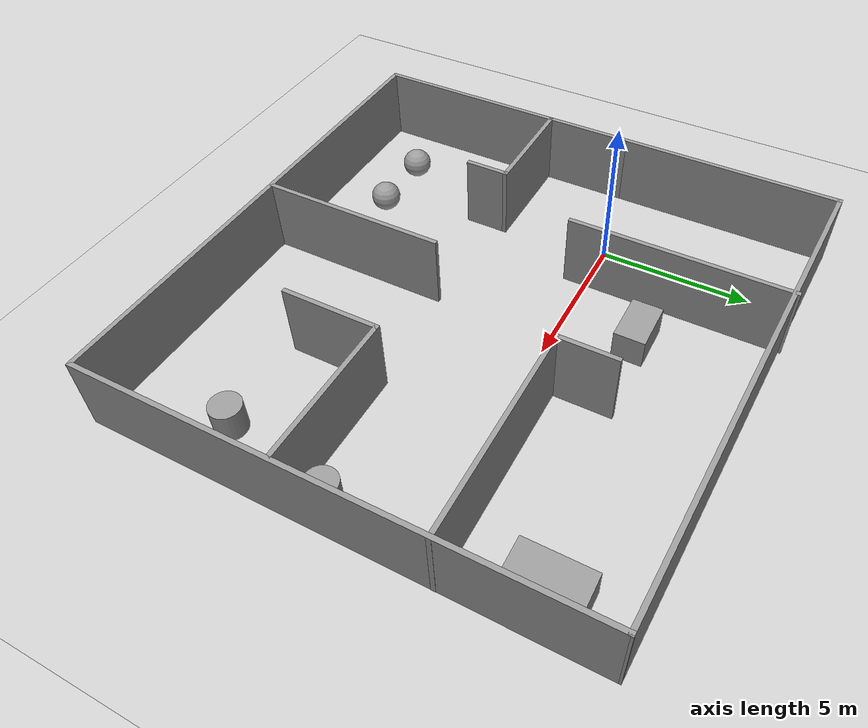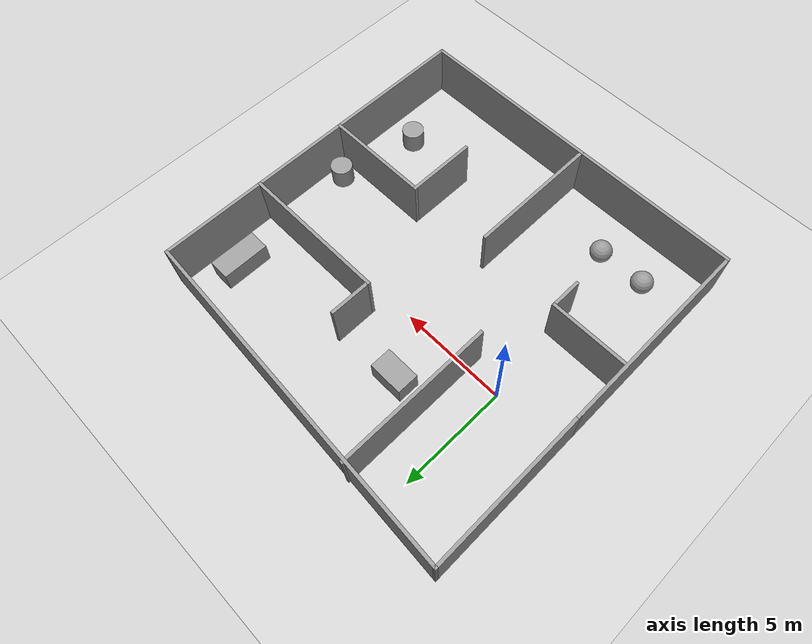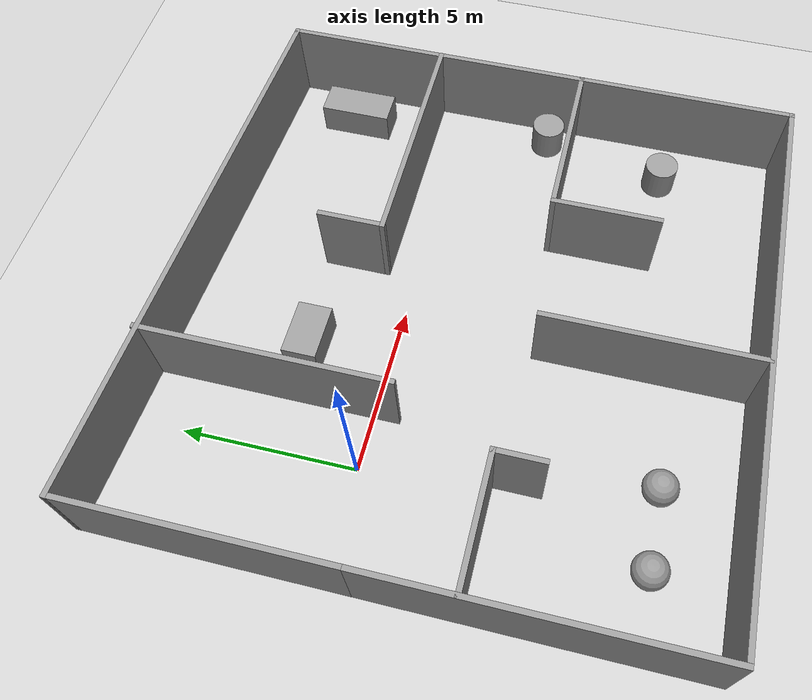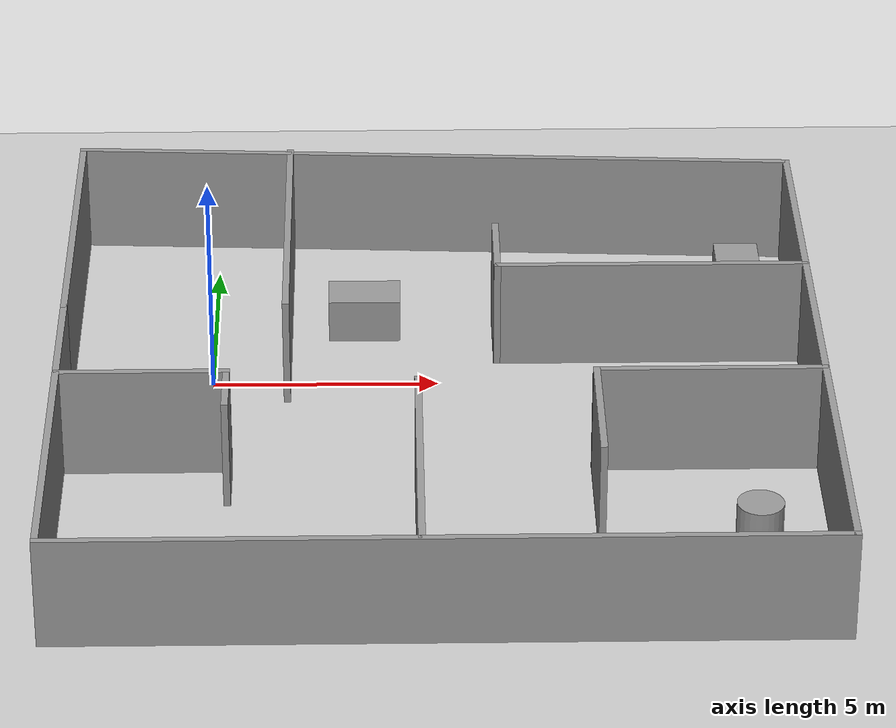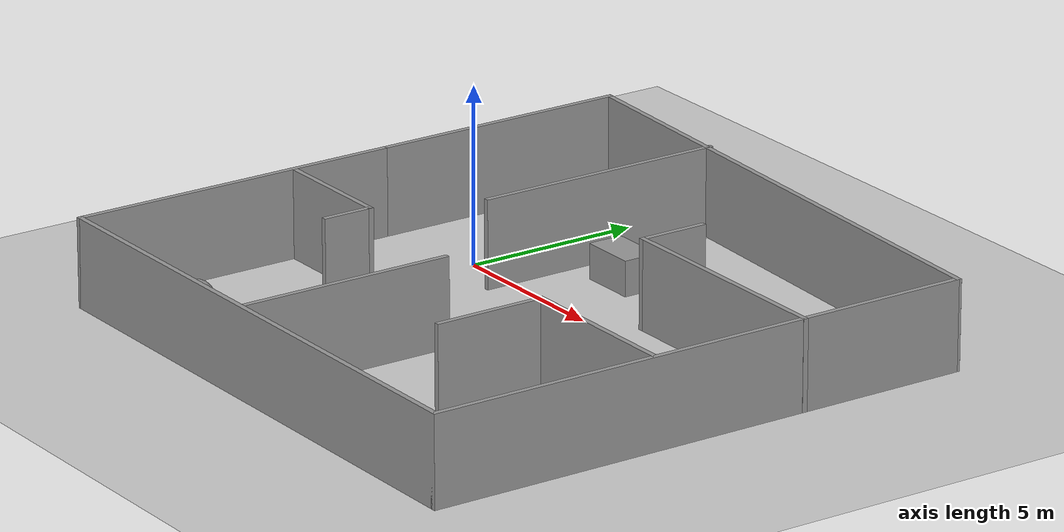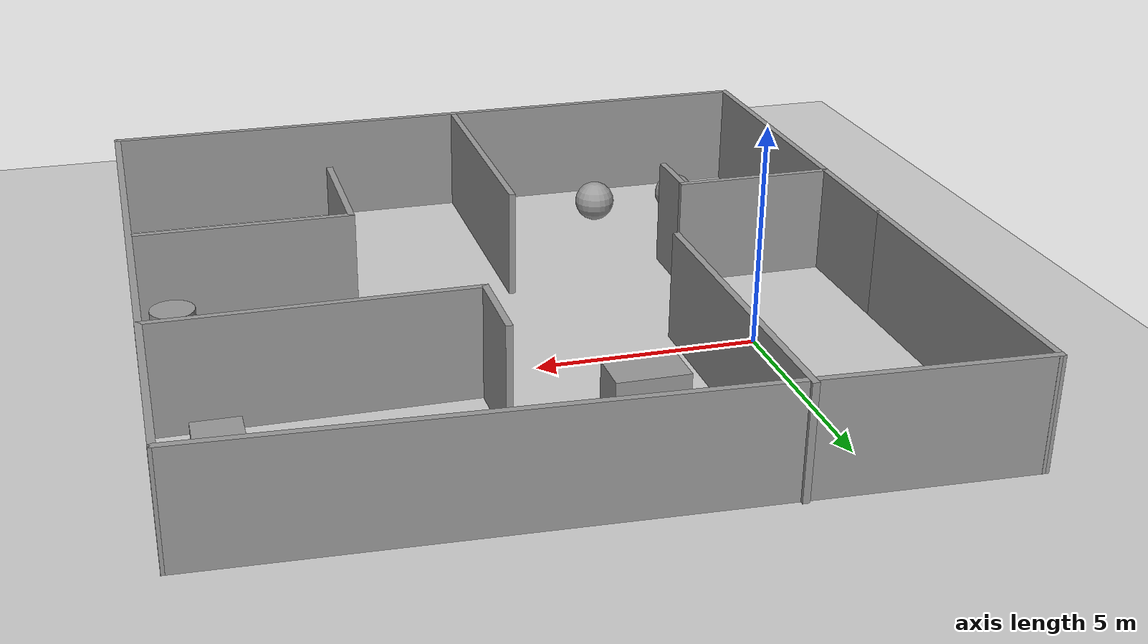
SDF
<sdf version="1.7">
 <world name="default">
  <light name="sun" type="directional">
   <pose>0 0 10 0 -0 0</pose>
   <diffuse>0.8 0.8 0.8 1</diffuse>
   <specular>0.2 0.2 0.2 1</specular>
   <attenuation>
    <range>1000</range>
    <constant>0.9</constant>
    <linear>0.01</linear>
    <quadratic>0.001</quadratic>
   </attenuation>
   <direction>-0.5 0.1 -0.9</direction>
   <spot><inner_angle>0</inner_angle><outer_angle>0</outer_angle><falloff>0</falloff></spot>
  </light>
  <model name="ground_plane">
   <static>1</static>
   <link name="link">
    <collision name="collision">
     <geometry><plane><normal>0 0 1</normal><size>100 100</size></plane></geometry>
     <surface>
      <contact><collide_bitmask>65535</collide_bitmask></contact>
      <friction><ode><mu>100</mu><mu2>50</mu2></ode></friction>
     </surface>
    </collision>
    <visual name="visual">
     <cast_shadows>0</cast_shadows>
     <geometry><plane><normal>0 0 1</normal><size>100 100</size></plane></geometry>
     <material>
      <script><uri>file://media/materials/scripts/gazebo.material</uri><name>Gazebo/Grey</name></script>
     </material>
    </visual>
   </link>
  </model>
  <gravity>0 0 -9.8</gravity>
  <magnetic_field>6e-06 2.3e-05 -4.2e-05</magnetic_field>
  <atmosphere type="adiabatic"/>
  <physics type="ode">
   <max_step_size>0.001</max_step_size>
   <real_time_factor>1</real_time_factor>
   <real_time_update_rate>1000</real_time_update_rate>
  </physics>
  <scene><ambient>0.4 0.4 0.4 1</ambient><background>0.7 0.7 0.7 1</background><shadows>1</shadows></scene>
  <audio><device>default</device></audio>
  <spherical_coordinates>
   <surface_model>EARTH_WGS84</surface_model>
   <latitude_deg>0</latitude_deg>
   <longitude_deg>0</longitude_deg>
   <elevation>0</elevation>
   <heading_deg>0</heading_deg>
  </spherical_coordinates>
  <model name="P1_model">
   <pose>5.00501 -1.7481 0 0 -0 0</pose>
   <link name="Wall_0">
    <collision name="Wall_0_Collision">
     <geometry><box><size>7.5 0.15 2.5</size></box></geometry>
     <pose>0 0 1.25 0 -0 0</pose>
    </collision>
    <visual name="Wall_0_Visual">
     <pose>0 0 1.25 0 -0 0</pose>
     <geometry><box><size>7.5 0.15 2.5</size></box></geometry>
     <material>
      <script><uri>file://media/materials/scripts/gazebo.material</uri><name>Gazebo/Grey</name></script>
      <ambient>1 1 1 1</ambient>
     </material>
     <meta><layer>0</layer></meta>
    </visual>
    <pose>-8.17501 4.6731 0 0 -0 1.5708</pose>
   </link>
   <link name="Wall_26">
    <collision name="Wall_26_Collision">
     <geometry><box><size>9.5 0.15 2.5</size></box></geometry>
     <pose>0 0 1.25 0 -0 0</pose>
    </collision>
    <visual name="Wall_26_Visual">
     <pose>0 0 1.25 0 -0 0</pose>
     <geometry><box><size>9.5 0.15 2.5</size></box></geometry>
     <material>
      <script><uri>file://media/materials/scripts/gazebo.material</uri><name>Gazebo/Grey</name></script>
      <ambient>1 1 1 1</ambient>
     </material>
     <meta><layer>0</layer></meta>
    </visual>
    <pose>-8.17501 -3.6769 0 0 -0 -1.5708</pose>
   </link>
   <link name="Wall_27">
    <collision name="Wall_27_Collision">
     <geometry><box><size>16.5 0.15 2.5</size></box></geometry>
     <pose>0 0 1.25 0 -0 0</pose>
    </collision>
    <visual name="Wall_27_Visual">
     <pose>0 0 1.25 0 -0 0</pose>
     <geometry><box><size>16.5 0.15 2.5</size></box></geometry>
     <material>
      <script><uri>file://media/materials/scripts/gazebo.material</uri><name>Gazebo/Grey</name></script>
      <ambient>1 1 1 1</ambient>
     </material>
     <meta><layer>0</layer></meta>
    </visual>
    <pose>-8e-06 -8.3519 0 0 -0 0</pose>
   </link>
   <link name="Wall_28">
    <collision name="Wall_28_Collision">
     <geometry><box><size>16 0.15 2.5</size></box></geometry>
     <pose>0 0 1.25 0 -0 0</pose>
    </collision>
    <visual name="Wall_28_Visual">
     <pose>0 0 1.25 0 -0 0</pose>
     <geometry><box><size>16 0.15 2.5</size></box></geometry>
     <material>
      <script><uri>file://media/materials/scripts/gazebo.material</uri><name>Gazebo/Grey</name></script>
      <ambient>1 1 1 1</ambient>
     </material>
     <meta><layer>0</layer></meta>
    </visual>
    <pose>8.17499 -0.426896 0 0 -0 1.5708</pose>
   </link>
   <link name="Wall_29">
    <collision name="Wall_29_Collision">
     <geometry><box><size>16.5221 0.15 2.5</size></box></geometry>
     <pose>0 0 1.25 0 -0 0</pose>
    </collision>
    <visual name="Wall_29_Visual">
     <pose>0 0 1.25 0 -0 0</pose>
     <geometry><box><size>16.5221 0.15 2.5</size></box></geometry>
     <material>
      <script><uri>file://media/materials/scripts/gazebo.material</uri><name>Gazebo/Grey</name></script>
      <ambient>1 1 1 1</ambient>
     </material>
     <meta><layer>0</layer></meta>
    </visual>
    <pose>-8e-06 7.9231 0 0 -0 3.08965</pose>
   </link>
   <link name="Wall_32">
    <collision name="Wall_32_Collision">
     <geometry><box><size>7.25 0.15 2.5</size></box></geometry>
     <pose>0 0 1.25 0 -0 0</pose>
    </collision>
    <visual name="Wall_32_Visual">
     <pose>0 0 1.25 0 -0 0</pose>
     <geometry><box><size>7.25 0.15 2.5</size></box></geometry>
     <material>
      <script><uri>file://media/materials/scripts/gazebo.material</uri><name>Gazebo/Grey</name></script>
      <ambient>1 1 1 1</ambient>
     </material>
     <meta><layer>0</layer></meta>
    </visual>
    <pose>-3.34795 4.62518 0 0 -0 -1.5708</pose>
   </link>
   <link name="Wall_34">
    <collision name="Wall_34_Collision">
     <geometry><box><size>7 0.15 2.5</size></box></geometry>
     <pose>0 0 1.25 0 -0 0</pose>
    </collision>
    <visual name="Wall_34_Visual">
     <pose>0 0 1.25 0 -0 0</pose>
     <geometry><box><size>7 0.15 2.5</size></box></geometry>
     <material>
      <script><uri>file://media/materials/scripts/gazebo.material</uri><name>Gazebo/Grey</name></script>
      <ambient>1 1 1 1</ambient>
     </material>
     <meta><layer>0</layer></meta>
    </visual>
    <pose>4.7538 2.67781 0 0 -0 3.14159</pose>
   </link>
   <link name="Wall_35">
    <collision name="Wall_35_Collision">
     <geometry><box><size>2 0.15 2.5</size></box></geometry>
     <pose>0 0 1.25 0 -0 0</pose>
    </collision>
    <visual name="Wall_35_Visual">
     <pose>0 0 1.25 0 -0 0</pose>
     <geometry><box><size>2 0.15 2.5</size></box></geometry>
     <material>
      <script><uri>file://media/materials/scripts/gazebo.material</uri><name>Gazebo/Grey</name></script>
      <ambient>1 1 1 1</ambient>
     </material>
     <meta><layer>0</layer></meta>
    </visual>
    <pose>1.3288 3.60281 0 0 -0 1.5708</pose>
   </link>
   <link name="Wall_37">
    <collision name="Wall_37_Collision">
     <geometry><box><size>3.75 0.15 2.5</size></box></geometry>
     <pose>0 0 1.25 0 -0 0</pose>
    </collision>
    <visual name="Wall_37_Visual">
     <pose>0 0 1.25 0 -0 0</pose>
     <geometry><box><size>3.75 0.15 2.5</size></box></geometry>
     <material>
      <script><uri>file://media/materials/scripts/gazebo.material</uri><name>Gazebo/Grey</name></script>
      <ambient>1 1 1 1</ambient>
     </material>
     <meta><layer>0</layer></meta>
    </visual>
    <pose>-6.35792 -1.82126 0 0 -0 0</pose>
   </link>
   <link name="Wall_38">
    <collision name="Wall_38_Collision">
     <geometry><box><size>1.5 0.15 2.5</size></box></geometry>
     <pose>0 0 1.25 0 -0 0</pose>
    </collision>
    <visual name="Wall_38_Visual">
     <pose>0 0 1.25 0 -0 0</pose>
     <geometry><box><size>1.5 0.15 2.5</size></box></geometry>
     <material>
      <script><uri>file://media/materials/scripts/gazebo.material</uri><name>Gazebo/Grey</name></script>
      <ambient>1 1 1 1</ambient>
     </material>
     <meta><layer>0</layer></meta>
    </visual>
    <pose>-4.55793 -2.49627 0 0 -0 -1.5708</pose>
   </link>
   <link name="Wall_40">
    <collision name="Wall_40_Collision">
     <geometry><box><size>5 0.15 2.5</size></box></geometry>
     <pose>0 0 1.25 0 -0 0</pose>
    </collision>
    <visual name="Wall_40_Visual">
     <pose>0 0 1.25 0 -0 0</pose>
     <geometry><box><size>5 0.15 2.5</size></box></geometry>
     <material>
      <script><uri>file://media/materials/scripts/gazebo.material</uri><name>Gazebo/Grey</name></script>
      <ambient>1 1 1 1</ambient>
     </material>
     <meta><layer>0</layer></meta>
    </visual>
    <pose>5.73186 -1.86205 0 0 -0 3.14159</pose>
   </link>
   <link name="Wall_41">
    <collision name="Wall_41_Collision">
     <geometry><box><size>3.25 0.15 2.5</size></box></geometry>
     <pose>0 0 1.25 0 -0 0</pose>
    </collision>
    <visual name="Wall_41_Visual">
     <pose>0 0 1.25 0 -0 0</pose>
     <geometry><box><size>3.25 0.15 2.5</size></box></geometry>
     <material>
      <script><uri>file://media/materials/scripts/gazebo.material</uri><name>Gazebo/Grey</name></script>
      <ambient>1 1 1 1</ambient>
     </material>
     <meta><layer>0</layer></meta>
    </visual>
    <pose>3.30686 -3.41205 0 0 -0 -1.5708</pose>
   </link>
   <link name="Wall_43">
    <collision name="Wall_43_Collision">
     <geometry><box><size>6.25 0.15 2.5</size></box></geometry>
     <pose>0 0 1.25 0 -0 0</pose>
    </collision>
    <visual name="Wall_43_Visual">
     <pose>0 0 1.25 0 -0 0</pose>
     <geometry><box><size>6.25 0.15 2.5</size></box></geometry>
     <material>
      <script><uri>file://media/materials/scripts/gazebo.material</uri><name>Gazebo/Grey</name></script>
      <ambient>1 1 1 1</ambient>
     </material>
     <meta><layer>0</layer></meta>
    </visual>
    <pose>-0.489974 -5.25639 0 0 -0 1.5708</pose>
   </link>
   <static>1</static>
  </model>
  <model name="unit_sphere">
   <pose>-1.00084 -7.98329 0.5 0 -0 0</pose>
   <link name="link">
    <inertial>
     <mass>1</mass>
     <inertia><ixx>0.1</ixx><ixy>0</ixy><ixz>0</ixz><iyy>0.1</iyy><iyz>0</iyz><izz>0.1</izz></inertia>
    </inertial>
    <collision name="collision"><geometry><sphere><radius>0.5</radius></sphere></geometry></collision>
    <visual name="visual">
     <geometry><sphere><radius>0.5</radius></sphere></geometry>
     <material>
      <script><name>Gazebo/Grey</name><uri>file://media/materials/scripts/gazebo.material</uri></script>
     </material>
    </visual>
   </link>
  </model>
  <model name="unit_box">
   <pose>3.37125 2.40768 0.5 0 -0 0</pose>
   <link name="link">
    <inertial>
     <mass>1</mass>
     <inertia>
      <ixx>0.166667</ixx>
      <ixy>0</ixy>
      <ixz>0</ixz>
      <iyy>0.166667</iyy>
      <iyz>0</iyz>
      <izz>0.166667</izz>
     </inertia>
    </inertial>
    <collision name="collision"><geometry><box><size>1.61378 1 1</size></box></geometry></collision>
    <visual name="visual">
     <geometry><box><size>1.61378 1 1</size></box></geometry>
     <material>
      <script><name>Gazebo/Grey</name><uri>file://media/materials/scripts/gazebo.material</uri></script>
     </material>
    </visual>
   </link>
  </model>
  <model name="unit_sphere_0">
   <pose>1.21762 -7.95805 0.5 0 -0 0</pose>
   <link name="link">
    <inertial>
     <mass>1</mass>
     <inertia><ixx>0.1</ixx><ixy>0</ixy><ixz>0</ixz><iyy>0.1</iyy><iyz>0</iyz><izz>0.1</izz></inertia>
    </inertial>
    <collision name="collision"><geometry><sphere><radius>0.5</radius></sphere></geometry></collision>
    <visual name="visual">
     <geometry><sphere><radius>0.5</radius></sphere></geometry>
     <material>
      <script><name>Gazebo/Grey</name><uri>file://media/materials/scripts/gazebo.material</uri></script>
     </material>
    </visual>
   </link>
  </model>
  <model name="unit_cylinder">
   <pose>11.6079 -6.60041 0.499998 3e-06 -4e-06 0</pose>
   <link name="link">
    <inertial>
     <mass>1</mass>
     <inertia><ixx>0.145833</ixx><ixy>0</ixy><ixz>0</ixz><iyy>0.145833</iyy><iyz>0</iyz><izz>0.125</izz></inertia>
    </inertial>
    <collision name="collision">
     <geometry><cylinder><radius>0.5</radius><length>1</length></cylinder></geometry>
    </collision>
    <visual name="visual">
     <geometry><cylinder><radius>0.5</radius><length>1</length></cylinder></geometry>
     <material>
      <script><name>Gazebo/Grey</name><uri>file://media/materials/scripts/gazebo.material</uri></script>
     </material>
    </visual>
   </link>
  </model>
  <model name="unit_cylinder_0">
   <pose>12.4196 -2.82433 0.499992 -3e-06 -4e-06 -0</pose>
   <link name="link">
    <inertial>
     <mass>1</mass>
     <inertia><ixx>0.145833</ixx><ixy>0</ixy><ixz>0</ixz><iyy>0.145833</iyy><iyz>0</iyz><izz>0.125</izz></inertia>
    </inertial>
    <collision name="collision">
     <geometry><cylinder><radius>0.5</radius><length>1</length></cylinder></geometry>
    </collision>
    <visual name="visual">
     <geometry><cylinder><radius>0.5</radius><length>1</length></cylinder></geometry>
     <material>
      <script><name>Gazebo/Grey</name><uri>file://media/materials/scripts/gazebo.material</uri></script>
     </material>
    </visual>
   </link>
  </model>
  <model name="unit_box_0">
   <pose>11.9494 3.44481 0.5 0 -0 0</pose>
   <link name="link">
    <inertial>
     <mass>1</mass>
     <inertia>
      <ixx>0.166667</ixx>
      <ixy>0</ixy>
      <ixz>0</ixz>
      <iyy>0.166667</iyy>
      <iyz>0</iyz>
      <izz>0.166667</izz>
     </inertia>
    </inertial>
    <collision name="collision"><geometry><box><size>1 2.17618 1</size></box></geometry></collision>
    <visual name="visual">
     <geometry><box><size>1 2.17618 1</size></box></geometry>
     <material>
      <script><name>Gazebo/Grey</name><uri>file://media/materials/scripts/gazebo.material</uri></script>
     </material>
    </visual>
   </link>
  </model>
 </world>
</sdf>
